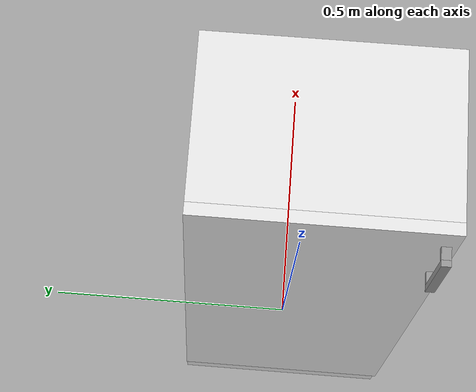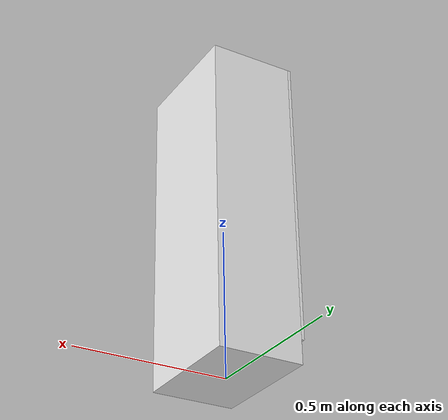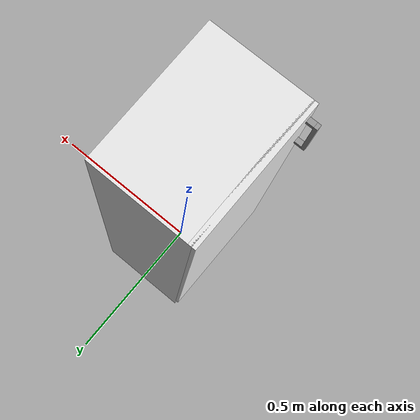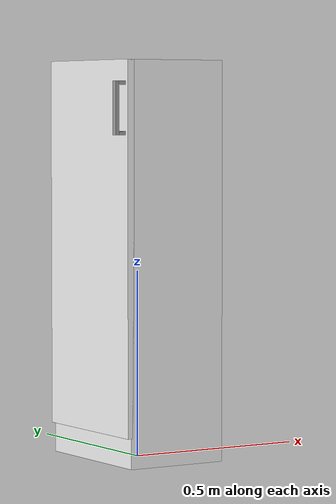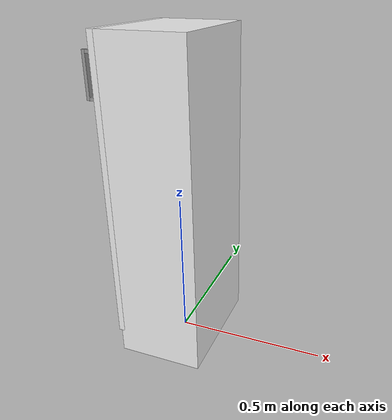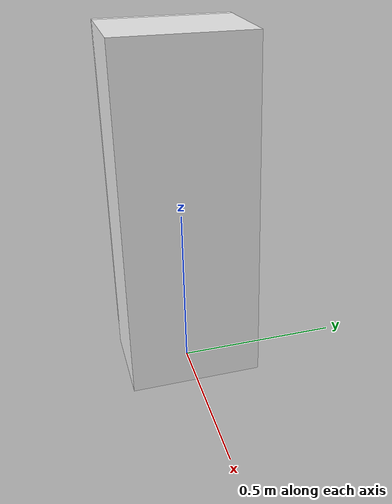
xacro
<?xml version="1.0"?>
<robot name="cabinet"
	xmlns:xacro="http://www.ros.org/wiki/xacro"
	xmlns:xi="http://www.w3.org/2001/XInclude"
	xmlns:gazebo="http://playerstage.sourceforge.net/gazebo/xmlschema/#gz"
	xmlns:model="http://playerstage.sourceforge.net/gazebo/xmlschema/#model"
	xmlns:sensor="http://playerstage.sourceforge.net/gazebo/xmlschema/#sensor"
	xmlns:body="http://playerstage.sourceforge.net/gazebo/xmlschema/#body"
	xmlns:geom="http://playerstage.sourceforge.net/gazebo/xmlschema/#geom"
	xmlns:joint="http://playerstage.sourceforge.net/gazebo/xmlschema/#joint"
	xmlns:interface="http://playerstage.sourceforge.net/gazebo/xmlschema/#interface"
	xmlns:rendering="http://playerstage.sourceforge.net/gazebo/xmlschema/#rendering"
	xmlns:renderable="http://playerstage.sourceforge.net/gazebo/xmlschema/#renderable"
	xmlns:controller="http://playerstage.sourceforge.net/gazebo/xmlschema/#controller"
	xmlns:physics="http://playerstage.sourceforge.net/gazebo/xmlschema/#physics"
>

  <xacro:property name="cabinet_height" value="1.06" />
  <xacro:property name="cabinet_width" value="0.28" />
  <xacro:property name="cabinet_depth" value="0.40" />
  <xacro:property name="cabinet_x" value="1.5" />
  <xacro:property name="cabinet_y" value="0.0" />
  <xacro:property name="cabinet_z" value="0.0" />

<!-- dummy_link -->
	<link name="dummy_link">
		<inertial>
			<origin xyz="0 0 0" />
			<mass value="5.0" />
			<inertia ixx="0.0" ixy="0.0" ixz="0.0" iyy="0.0" iyz="0.0" izz="0.0" />
		</inertial>
		<visual>
			<origin xyz="0 0 0" />
			<geometry>
				<box size="0.00 0.00 0.00" />
			</geometry>
		</visual>
		<collision>
			<origin xyz="0 0 0" />
			<geometry>
				<box size="0.00 0.00 0.00" />
			</geometry>
		</collision>
	</link>

<!-- cabinet -->

	<!-- cabinet_structure -->
	<link name="cabinet_structure">
		<inertial>
			<origin xyz="0 0 0" />
			<mass value="5.0" />
			<inertia ixx="0.0" ixy="0.0" ixz="0.0" iyy="0.0" iyz="0.0" izz="0.0" />
		</inertial>
		<visual>
			<origin xyz="0 0 0" />
			<geometry>
				<box size="${cabinet_width} ${cabinet_depth} ${cabinet_height}" />
			</geometry>
		</visual>
		<collision>
			<origin xyz="0 0 0" />
			<geometry>
				<box size="${cabinet_width} ${cabinet_depth} ${cabinet_height}" />
			</geometry>
		</collision>
	</link>

	<gazebo reference="cabinet_structure">
		<material>Gazebo/White</material>
	</gazebo>

	<joint name="joint_structure" type="fixed">
		<origin xyz="0.000 0.000 ${cabinet_height/2}" rpy="0 0 0" />
		<parent link="dummy_link" />
		<child link="cabinet_structure" />
	</joint>

	<!-- cabinet_door -->
	<link name="cabinet_door">
		<inertial>
			<origin xyz="0 0 0" />
			<mass value="1.0" />
			<inertia ixx="0.0" ixy="0.0" ixz="0.0" iyy="0.0" iyz="0.0" izz="0.0" />
		</inertial>
		<visual>
			<origin xyz="0 0 0" />
			<geometry>
				<box size="0.02 ${cabinet_depth} ${cabinet_height-0.08}" />
			</geometry>
		</visual>
		<collision>
			<origin xyz="0 0 0" />
			<geometry>
				<box size="0.02 ${cabinet_depth} ${cabinet_height-0.08}" />
			</geometry>
		</collision>
	</link>

	<gazebo reference="cabinet_door">
		<material>Gazebo/White</material>
	</gazebo>

	<joint name="joint_door" type="fixed">
		<origin xyz="${-cabinet_width/2} 0.000 0.04" rpy="0 0 0" />
		<parent link="cabinet_structure" />
		<child link="cabinet_door" />
	</joint>

	<!--knob1-->
	<link name="knob1_link">
		<inertial>
			<origin xyz="0 0 0" />
			<mass value="1.0" />
			<inertia ixx="0.0" ixy="0.0" ixz="0.0" iyy="0.0" iyz="0.0" izz="0.0" />
		</inertial>
		<visual>
			<origin xyz="0 0 0" />
			<geometry>
				<box size="0.03 0.015 0.01" />
			</geometry>
		</visual>
		<collision>
			<origin xyz="0 0 0" />
			<geometry>
				<box size="0.03 0.015 0.01" />
			</geometry>
		</collision>
	</link>

	<gazebo reference="knob1_link">
		<material>Gazebo/Grey</material>
	</gazebo>

	<joint name="joint_knob1" type="fixed">
		<origin xyz="${-0.015} ${-cabinet_depth/2+0.0175} ${(cabinet_height-0.08)/2-0.06}" rpy="0 0 0" />
		<parent link="cabinet_door" />
		<child link="knob1_link" />
	</joint>

	<!--knob2-->
	<link name="knob2_link">
		<inertial>
			<origin xyz="0 0 0" />
			<mass value="1.0" />
			<inertia ixx="0.0" ixy="0.0" ixz="0.0" iyy="0.0" iyz="0.0" izz="0.0" />
		</inertial>
		<visual>
			<origin xyz="0 0 0" />
			<geometry>
				<box size="0.03 0.015 0.01" />
			</geometry>
		</visual>
		<collision>
			<origin xyz="0 0 0" />
			<geometry>
				<box size="0.03 0.015 0.01" />
			</geometry>
		</collision>
	</link>

	<gazebo reference="knob2_link">
		<material>Gazebo/Grey</material>
	</gazebo>

	<joint name="joint_knob2" type="fixed">
		<origin xyz="${-0.015} ${-cabinet_depth/2+0.0175} ${(cabinet_height-0.08)/2-0.06-0.13}" rpy="0 0 0" />
		<parent link="cabinet_door" />
		<child link="knob2_link" />
	</joint>

	<!--knob3-->
	<link name="knob3_link">
		<inertial>
			<origin xyz="0 0 0" />
			<mass value="1.0" />
			<inertia ixx="0.0" ixy="0.0" ixz="0.0" iyy="0.0" iyz="0.0" izz="0.0" />
		</inertial>
		<visual>
			<origin xyz="0 0 0" />
			<geometry>
				<box size="0.01 0.015 0.14" />
			</geometry>
		</visual>
		<collision>
			<origin xyz="0 0 0" />
			<geometry>
				<box size="0.01 0.015 0.14" />
			</geometry>
		</collision>
	</link>

	<gazebo reference="knob3_link">
		<material>Gazebo/Grey</material>
	</gazebo>

	<joint name="joint_knob3" type="fixed">
		<origin xyz="-0.02 0 -0.065" rpy="0 0 0" />
		<parent link="knob1_link" />
		<child link="knob3_link" />
	</joint>
</robot>
